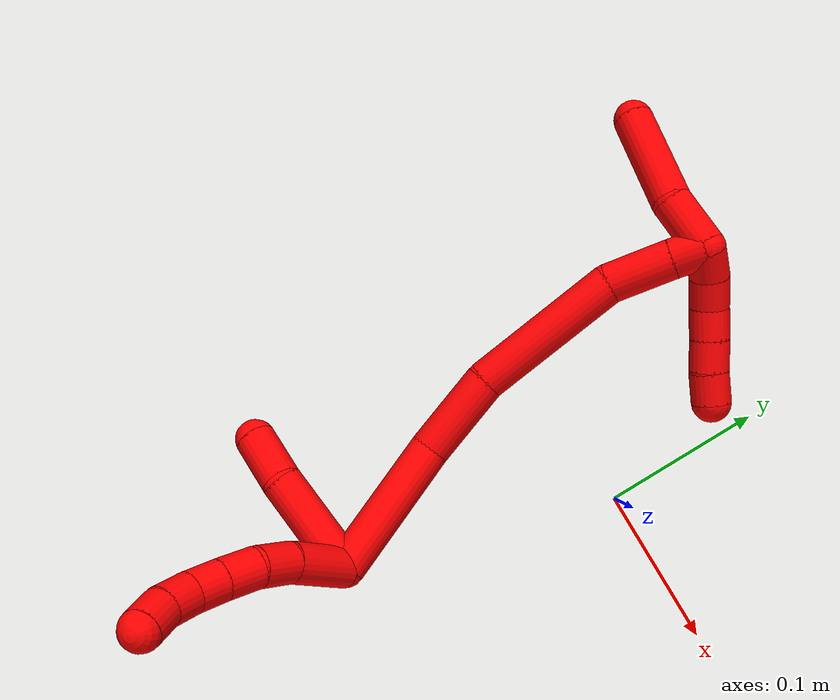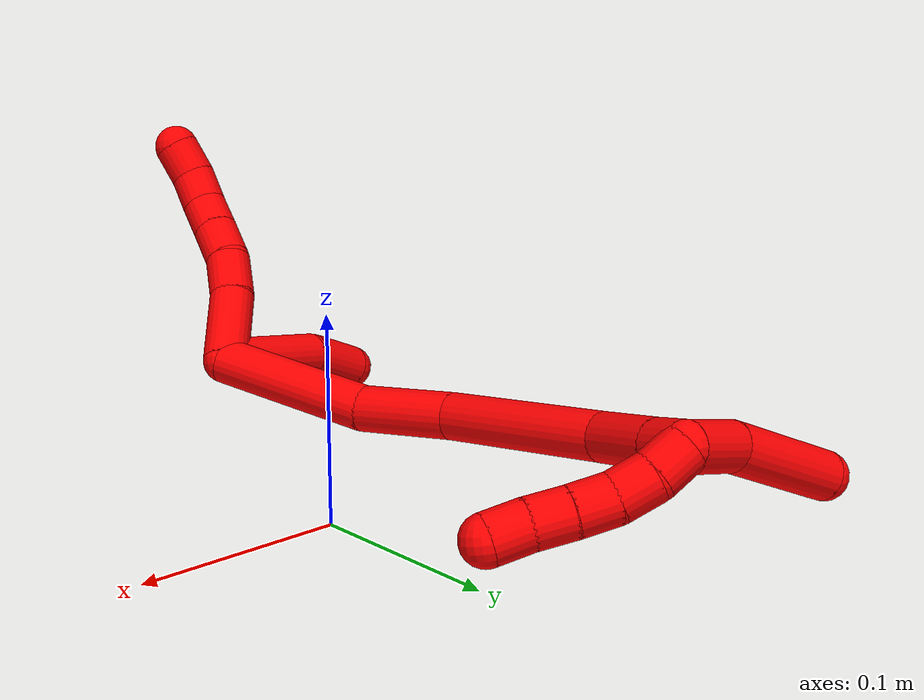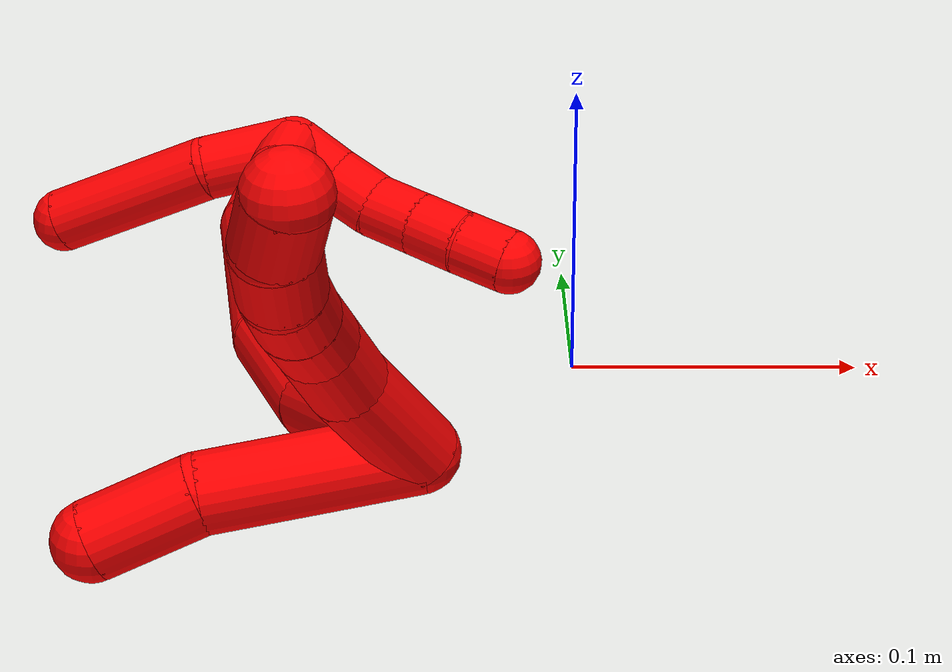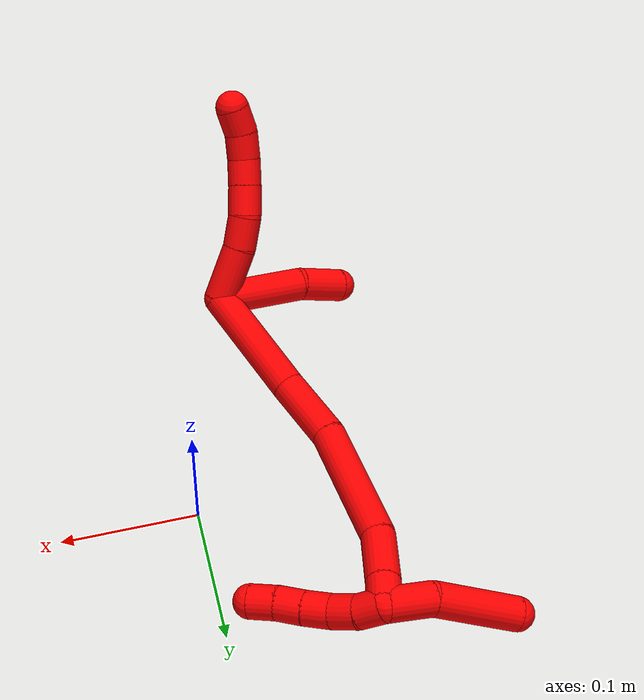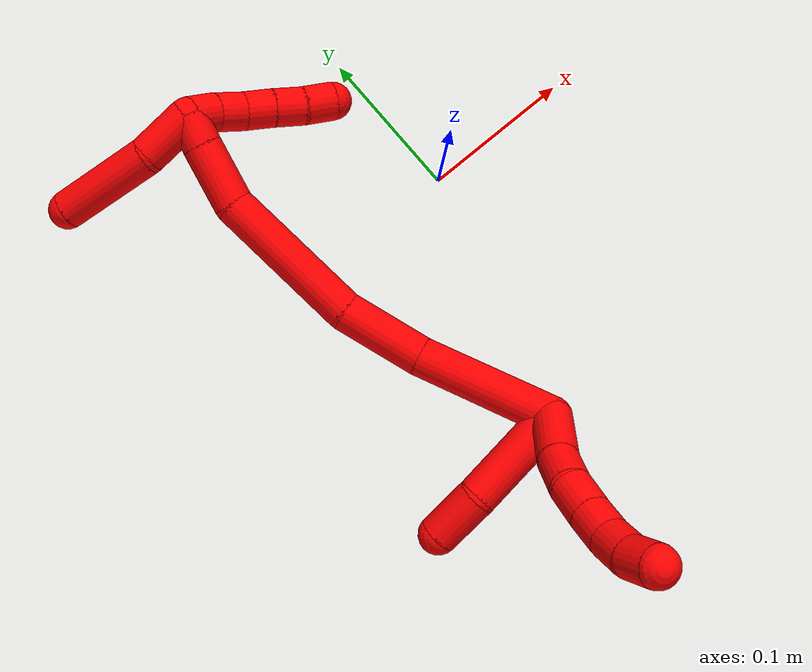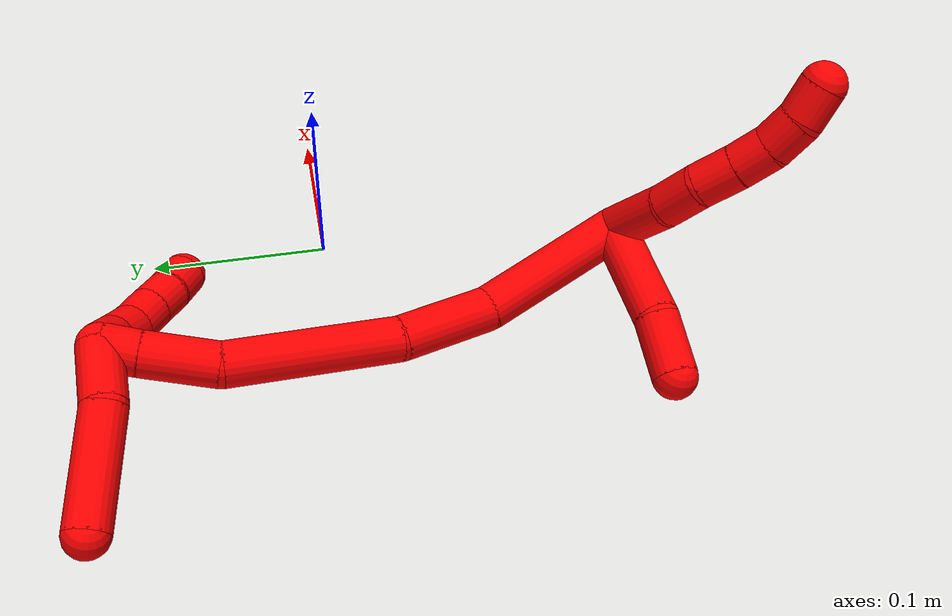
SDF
<sdf version="1.7">
 <world name="default">
  <model name="2">
   <static>0</static>
   <link name="2">
    <collision name="collision-cylinder-e_1_2_8">
     <pose>-0.004645 -0.010701 0.017431 0.550582 -0.223329 -0.063324</pose>
     <geometry><cylinder><radius>0.0125</radius><length>0.041949</length></cylinder></geometry>
     <surface>
      <friction><ode><mu>1.16</mu><mu2>1.16</mu2><slip1>0</slip1><slip2>0</slip2></ode></friction>
      <contact><ode><kp>1e+06</kp><kd>1</kd><max_vel>0</max_vel><min_depth>0.001</min_depth></ode></contact>
     </surface>
    </collision>
    <visual name="visual-cylinder-e_1_2_8">
     <pose>-0.004645 -0.010701 0.017431 0.550582 -0.223329 -0.063324</pose>
     <geometry><cylinder><radius>0.0125</radius><length>0.041949</length></cylinder></geometry>
     <material><ambient>1 0 0 1</ambient></material>
    </visual>
    <collision name="collision-cylinder-e_2_8_9">
     <pose>-0.009765 -0.027564 0.045403 0.529022 -0.038807 -0.010512</pose>
     <geometry><cylinder><radius>0.0125</radius><length>0.024439</length></cylinder></geometry>
     <surface>
      <friction><ode><mu>1.16</mu><mu2>1.16</mu2><slip1>0</slip1><slip2>0</slip2></ode></friction>
      <contact><ode><kp>1e+06</kp><kd>1</kd><max_vel>0</max_vel><min_depth>0.001</min_depth></ode></contact>
     </surface>
    </collision>
    <visual name="visual-cylinder-e_2_8_9">
     <pose>-0.009765 -0.027564 0.045403 0.529022 -0.038807 -0.010512</pose>
     <geometry><cylinder><radius>0.0125</radius><length>0.024439</length></cylinder></geometry>
     <material><ambient>1 0 0 1</ambient></material>
    </visual>
    <collision name="collision-cylinder-e_3_9_10">
     <pose>-0.008199 -0.040696 0.06479 0.667277 0.179194 0.062255</pose>
     <geometry><cylinder><radius>0.0125</radius><length>0.022889</length></cylinder></geometry>
     <surface>
      <friction><ode><mu>1.16</mu><mu2>1.16</mu2><slip1>0</slip1><slip2>0</slip2></ode></friction>
      <contact><ode><kp>1e+06</kp><kd>1</kd><max_vel>0</max_vel><min_depth>0.001</min_depth></ode></contact>
     </surface>
    </collision>
    <visual name="visual-cylinder-e_3_9_10">
     <pose>-0.008199 -0.040696 0.06479 0.667277 0.179194 0.062255</pose>
     <geometry><cylinder><radius>0.0125</radius><length>0.022889</length></cylinder></geometry>
     <material><ambient>1 0 0 1</ambient></material>
    </visual>
    <collision name="collision-cylinder-e_4_10_11">
     <pose>-0.004139 -0.053255 0.081749 0.603341 0.202289 0.06314</pose>
     <geometry><cylinder><radius>0.0125</radius><length>0.020116</length></cylinder></geometry>
     <surface>
      <friction><ode><mu>1.16</mu><mu2>1.16</mu2><slip1>0</slip1><slip2>0</slip2></ode></friction>
      <contact><ode><kp>1e+06</kp><kd>1</kd><max_vel>0</max_vel><min_depth>0.001</min_depth></ode></contact>
     </surface>
    </collision>
    <visual name="visual-cylinder-e_4_10_11">
     <pose>-0.004139 -0.053255 0.081749 0.603341 0.202289 0.06314</pose>
     <geometry><cylinder><radius>0.0125</radius><length>0.020116</length></cylinder></geometry>
     <material><ambient>1 0 0 1</ambient></material>
    </visual>
    <collision name="collision-cylinder-e_5_11_12">
     <pose>-0.0001 -0.062543 0.099075 0.381654 0.200519 0.038861</pose>
     <geometry><cylinder><radius>0.0125</radius><length>0.020261</length></cylinder></geometry>
     <surface>
      <friction><ode><mu>1.16</mu><mu2>1.16</mu2><slip1>0</slip1><slip2>0</slip2></ode></friction>
      <contact><ode><kp>1e+06</kp><kd>1</kd><max_vel>0</max_vel><min_depth>0.001</min_depth></ode></contact>
     </surface>
    </collision>
    <visual name="visual-cylinder-e_5_11_12">
     <pose>-0.0001 -0.062543 0.099075 0.381654 0.200519 0.038861</pose>
     <geometry><cylinder><radius>0.0125</radius><length>0.020261</length></cylinder></geometry>
     <material><ambient>1 0 0 1</ambient></material>
    </visual>
    <collision name="collision-cylinder-e_6_12_6">
     <pose>0.005462 -0.067622 0.117724 0.145361 0.355872 0.026186</pose>
     <geometry><cylinder><radius>0.0125</radius><length>0.020347</length></cylinder></geometry>
     <surface>
      <friction><ode><mu>1.16</mu><mu2>1.16</mu2><slip1>0</slip1><slip2>0</slip2></ode></friction>
      <contact><ode><kp>1e+06</kp><kd>1</kd><max_vel>0</max_vel><min_depth>0.001</min_depth></ode></contact>
     </surface>
    </collision>
    <visual name="visual-cylinder-e_6_12_6">
     <pose>0.005462 -0.067622 0.117724 0.145361 0.355872 0.026186</pose>
     <geometry><cylinder><radius>0.0125</radius><length>0.020347</length></cylinder></geometry>
     <material><ambient>1 0 0 1</ambient></material>
    </visual>
    <collision name="collision-cylinder-e_1_2_13">
     <pose>-0.025052 -0.020902 -0.00314 1.71992 -0.869986 -0.989816</pose>
     <geometry><cylinder><radius>0.0125</radius><length>0.065555</length></cylinder></geometry>
     <surface>
      <friction><ode><mu>1.16</mu><mu2>1.16</mu2><slip1>0</slip1><slip2>0</slip2></ode></friction>
      <contact><ode><kp>1e+06</kp><kd>1</kd><max_vel>0</max_vel><min_depth>0.001</min_depth></ode></contact>
     </surface>
    </collision>
    <visual name="visual-cylinder-e_1_2_13">
     <pose>-0.025052 -0.020902 -0.00314 1.71992 -0.869986 -0.989816</pose>
     <geometry><cylinder><radius>0.0125</radius><length>0.065555</length></cylinder></geometry>
     <material><ambient>1 0 0 1</ambient></material>
    </visual>
    <collision name="collision-cylinder-e_2_13_5">
     <pose>-0.062243 -0.052446 -0.012283 2.08432 -0.782075 -1.22926</pose>
     <geometry><cylinder><radius>0.0125</radius><length>0.034445</length></cylinder></geometry>
     <surface>
      <friction><ode><mu>1.16</mu><mu2>1.16</mu2><slip1>0</slip1><slip2>0</slip2></ode></friction>
      <contact><ode><kp>1e+06</kp><kd>1</kd><max_vel>0</max_vel><min_depth>0.001</min_depth></ode></contact>
     </surface>
    </collision>
    <visual name="visual-cylinder-e_2_13_5">
     <pose>-0.062243 -0.052446 -0.012283 2.08432 -0.782075 -1.22926</pose>
     <geometry><cylinder><radius>0.0125</radius><length>0.034445</length></cylinder></geometry>
     <material><ambient>1 0 0 1</ambient></material>
    </visual>
    <collision name="collision-cylinder-e_1_2_14">
     <pose>-0.034031 0.022167 -0.017127 -2.22862 -0.882105 1.53133</pose>
     <geometry><cylinder><radius>0.0125</radius><length>0.088155</length></cylinder></geometry>
     <surface>
      <friction><ode><mu>1.16</mu><mu2>1.16</mu2><slip1>0</slip1><slip2>0</slip2></ode></friction>
      <contact><ode><kp>1e+06</kp><kd>1</kd><max_vel>0</max_vel><min_depth>0.001</min_depth></ode></contact>
     </surface>
    </collision>
    <visual name="visual-cylinder-e_1_2_14">
     <pose>-0.034031 0.022167 -0.017127 -2.22862 -0.882105 1.53133</pose>
     <geometry><cylinder><radius>0.0125</radius><length>0.088155</length></cylinder></geometry>
     <material><ambient>1 0 0 1</ambient></material>
    </visual>
    <collision name="collision-cylinder-e_2_14_15">
     <pose>-0.089006 0.06115 -0.038265 -1.80496 -0.880726 1.0762</pose>
     <geometry><cylinder><radius>0.0125</radius><length>0.054314</length></cylinder></geometry>
     <surface>
      <friction><ode><mu>1.16</mu><mu2>1.16</mu2><slip1>0</slip1><slip2>0</slip2></ode></friction>
      <contact><ode><kp>1e+06</kp><kd>1</kd><max_vel>0</max_vel><min_depth>0.001</min_depth></ode></contact>
     </surface>
    </collision>
    <visual name="visual-cylinder-e_2_14_15">
     <pose>-0.089006 0.06115 -0.038265 -1.80496 -0.880726 1.0762</pose>
     <geometry><cylinder><radius>0.0125</radius><length>0.054314</length></cylinder></geometry>
     <material><ambient>1 0 0 1</ambient></material>
    </visual>
    <collision name="collision-cylinder-e_3_15_16">
     <pose>-0.139382 0.115102 -0.048819 -1.74518 -0.662761 0.778164</pose>
     <geometry><cylinder><radius>0.0125</radius><length>0.09567</length></cylinder></geometry>
     <surface>
      <friction><ode><mu>1.16</mu><mu2>1.16</mu2><slip1>0</slip1><slip2>0</slip2></ode></friction>
      <contact><ode><kp>1e+06</kp><kd>1</kd><max_vel>0</max_vel><min_depth>0.001</min_depth></ode></contact>
     </surface>
    </collision>
    <visual name="visual-cylinder-e_3_15_16">
     <pose>-0.139382 0.115102 -0.048819 -1.74518 -0.662761 0.778164</pose>
     <geometry><cylinder><radius>0.0125</radius><length>0.09567</length></cylinder></geometry>
     <material><ambient>1 0 0 1</ambient></material>
    </visual>
    <collision name="collision-cylinder-e_4_16_17">
     <pose>-0.176189 0.171547 -0.056271 -1.61788 -0.364431 0.381593</pose>
     <geometry><cylinder><radius>0.0125</radius><length>0.041378</length></cylinder></geometry>
     <surface>
      <friction><ode><mu>1.16</mu><mu2>1.16</mu2><slip1>0</slip1><slip2>0</slip2></ode></friction>
      <contact><ode><kp>1e+06</kp><kd>1</kd><max_vel>0</max_vel><min_depth>0.001</min_depth></ode></contact>
     </surface>
    </collision>
    <visual name="visual-cylinder-e_4_16_17">
     <pose>-0.176189 0.171547 -0.056271 -1.61788 -0.364431 0.381593</pose>
     <geometry><cylinder><radius>0.0125</radius><length>0.041378</length></cylinder></geometry>
     <material><ambient>1 0 0 1</ambient></material>
    </visual>
    <collision name="collision-cylinder-e_5_17_1">
     <pose>-0.186855 0.200554 -0.057288 -1.58188 -0.32728 0.330864</pose>
     <geometry><cylinder><radius>0.0125</radius><length>0.020483</length></cylinder></geometry>
     <surface>
      <friction><ode><mu>1.16</mu><mu2>1.16</mu2><slip1>0</slip1><slip2>0</slip2></ode></friction>
      <contact><ode><kp>1e+06</kp><kd>1</kd><max_vel>0</max_vel><min_depth>0.001</min_depth></ode></contact>
     </surface>
    </collision>
    <visual name="visual-cylinder-e_5_17_1">
     <pose>-0.186855 0.200554 -0.057288 -1.58188 -0.32728 0.330864</pose>
     <geometry><cylinder><radius>0.0125</radius><length>0.020483</length></cylinder></geometry>
     <material><ambient>1 0 0 1</ambient></material>
    </visual>
    <collision name="collision-cylinder-e_1_1_18">
     <pose>-0.181571 0.211352 -0.062419 -2.92581 1.03064 -2.76368</pose>
     <geometry><cylinder><radius>0.0125</radius><length>0.02</length></cylinder></geometry>
     <surface>
      <friction><ode><mu>1.16</mu><mu2>1.16</mu2><slip1>0</slip1><slip2>0</slip2></ode></friction>
      <contact><ode><kp>1e+06</kp><kd>1</kd><max_vel>0</max_vel><min_depth>0.001</min_depth></ode></contact>
     </surface>
    </collision>
    <visual name="visual-cylinder-e_1_1_18">
     <pose>-0.181571 0.211352 -0.062419 -2.92581 1.03064 -2.76368</pose>
     <geometry><cylinder><radius>0.0125</radius><length>0.02</length></cylinder></geometry>
     <material><ambient>1 0 0 1</ambient></material>
    </visual>
    <collision name="collision-cylinder-e_2_18_19">
     <pose>-0.163592 0.212236 -0.07084 3.07764 1.22345 3.05045</pose>
     <geometry><cylinder><radius>0.0125</radius><length>0.02</length></cylinder></geometry>
     <surface>
      <friction><ode><mu>1.16</mu><mu2>1.16</mu2><slip1>0</slip1><slip2>0</slip2></ode></friction>
      <contact><ode><kp>1e+06</kp><kd>1</kd><max_vel>0</max_vel><min_depth>0.001</min_depth></ode></contact>
     </surface>
    </collision>
    <visual name="visual-cylinder-e_2_18_19">
     <pose>-0.163592 0.212236 -0.07084 3.07764 1.22345 3.05045</pose>
     <geometry><cylinder><radius>0.0125</radius><length>0.02</length></cylinder></geometry>
     <material><ambient>1 0 0 1</ambient></material>
    </visual>
    <collision name="collision-cylinder-e_3_19_20">
     <pose>-0.144284 0.212193 -0.075603 -3.01397 1.43259 -2.99505</pose>
     <geometry><cylinder><radius>0.0125</radius><length>0.02</length></cylinder></geometry>
     <surface>
      <friction><ode><mu>1.16</mu><mu2>1.16</mu2><slip1>0</slip1><slip2>0</slip2></ode></friction>
      <contact><ode><kp>1e+06</kp><kd>1</kd><max_vel>0</max_vel><min_depth>0.001</min_depth></ode></contact>
     </surface>
    </collision>
    <visual name="visual-cylinder-e_3_19_20">
     <pose>-0.144284 0.212193 -0.075603 -3.01397 1.43259 -2.99505</pose>
     <geometry><cylinder><radius>0.0125</radius><length>0.02</length></cylinder></geometry>
     <material><ambient>1 0 0 1</ambient></material>
    </visual>
    <collision name="collision-cylinder-e_4_20_21">
     <pose>-0.124438 0.212089 -0.078012 2.8791 1.46262 2.84945</pose>
     <geometry><cylinder><radius>0.0125</radius><length>0.02</length></cylinder></geometry>
     <surface>
      <friction><ode><mu>1.16</mu><mu2>1.16</mu2><slip1>0</slip1><slip2>0</slip2></ode></friction>
      <contact><ode><kp>1e+06</kp><kd>1</kd><max_vel>0</max_vel><min_depth>0.001</min_depth></ode></contact>
     </surface>
    </collision>
    <visual name="visual-cylinder-e_4_20_21">
     <pose>-0.124438 0.212089 -0.078012 2.8791 1.46262 2.84945</pose>
     <geometry><cylinder><radius>0.0125</radius><length>0.02</length></cylinder></geometry>
     <material><ambient>1 0 0 1</ambient></material>
    </visual>
    <collision name="collision-cylinder-e_5_21_4">
     <pose>-0.104656 0.212521 -0.080685 -2.72934 1.39193 -2.65108</pose>
     <geometry><cylinder><radius>0.0125</radius><length>0.02</length></cylinder></geometry>
     <surface>
      <friction><ode><mu>1.16</mu><mu2>1.16</mu2><slip1>0</slip1><slip2>0</slip2></ode></friction>
      <contact><ode><kp>1e+06</kp><kd>1</kd><max_vel>0</max_vel><min_depth>0.001</min_depth></ode></contact>
     </surface>
    </collision>
    <visual name="visual-cylinder-e_5_21_4">
     <pose>-0.104656 0.212521 -0.080685 -2.72934 1.39193 -2.65108</pose>
     <geometry><cylinder><radius>0.0125</radius><length>0.02</length></cylinder></geometry>
     <material><ambient>1 0 0 1</ambient></material>
    </visual>
    <collision name="collision-cylinder-e_1_1_22">
     <pose>-0.204158 0.200026 -0.060617 1.87602 -0.917659 -1.18554</pose>
     <geometry><cylinder><radius>0.0125</radius><length>0.035284</length></cylinder></geometry>
     <surface>
      <friction><ode><mu>1.16</mu><mu2>1.16</mu2><slip1>0</slip1><slip2>0</slip2></ode></friction>
      <contact><ode><kp>1e+06</kp><kd>1</kd><max_vel>0</max_vel><min_depth>0.001</min_depth></ode></contact>
     </surface>
    </collision>
    <visual name="visual-cylinder-e_1_1_22">
     <pose>-0.204158 0.200026 -0.060617 1.87602 -0.917659 -1.18554</pose>
     <geometry><cylinder><radius>0.0125</radius><length>0.035284</length></cylinder></geometry>
     <material><ambient>1 0 0 1</ambient></material>
    </visual>
    <collision name="collision-cylinder-e_2_22_3">
     <pose>-0.244937 0.176995 -0.076745 2.36011 -0.974173 -1.81958</pose>
     <geometry><cylinder><radius>0.0125</radius><length>0.064716</length></cylinder></geometry>
     <surface>
      <friction><ode><mu>1.16</mu><mu2>1.16</mu2><slip1>0</slip1><slip2>0</slip2></ode></friction>
      <contact><ode><kp>1e+06</kp><kd>1</kd><max_vel>0</max_vel><min_depth>0.001</min_depth></ode></contact>
     </surface>
    </collision>
    <visual name="visual-cylinder-e_2_22_3">
     <pose>-0.244937 0.176995 -0.076745 2.36011 -0.974173 -1.81958</pose>
     <geometry><cylinder><radius>0.0125</radius><length>0.064716</length></cylinder></geometry>
     <material><ambient>1 0 0 1</ambient></material>
    </visual>
    <collision name="collision-sphere-3">
     <pose>-0.271705 0.16419 -0.08965 0 -0 0</pose>
     <geometry><sphere><radius>0.0125</radius></sphere></geometry>
     <surface>
      <friction><ode><mu>1.16</mu><mu2>1.16</mu2><slip1>0</slip1><slip2>0</slip2></ode></friction>
      <contact><ode><kp>1e+06</kp><kd>1</kd><max_vel>0</max_vel><min_depth>0.001</min_depth></ode></contact>
     </surface>
    </collision>
    <visual name="visual-sphere-3">
     <pose>-0.271705 0.16419 -0.08965 0 -0 0</pose>
     <geometry><sphere><radius>0.0125</radius></sphere></geometry>
     <material><ambient>1 0 0 1</ambient></material>
    </visual>
    <collision name="collision-sphere-22">
     <pose>-0.218169 0.189801 -0.063839 0 -0 0</pose>
     <geometry><sphere><radius>0.0125</radius></sphere></geometry>
     <surface>
      <friction><ode><mu>1.16</mu><mu2>1.16</mu2><slip1>0</slip1><slip2>0</slip2></ode></friction>
      <contact><ode><kp>1e+06</kp><kd>1</kd><max_vel>0</max_vel><min_depth>0.001</min_depth></ode></contact>
     </surface>
    </collision>
    <visual name="visual-sphere-22">
     <pose>-0.218169 0.189801 -0.063839 0 -0 0</pose>
     <geometry><sphere><radius>0.0125</radius></sphere></geometry>
     <material><ambient>1 0 0 1</ambient></material>
    </visual>
    <collision name="collision-sphere-4">
     <pose>-0.094816 0.213234 -0.082315 0 -0 0</pose>
     <geometry><sphere><radius>0.0125</radius></sphere></geometry>
     <surface>
      <friction><ode><mu>1.16</mu><mu2>1.16</mu2><slip1>0</slip1><slip2>0</slip2></ode></friction>
      <contact><ode><kp>1e+06</kp><kd>1</kd><max_vel>0</max_vel><min_depth>0.001</min_depth></ode></contact>
     </surface>
    </collision>
    <visual name="visual-sphere-4">
     <pose>-0.094816 0.213234 -0.082315 0 -0 0</pose>
     <geometry><sphere><radius>0.0125</radius></sphere></geometry>
     <material><ambient>1 0 0 1</ambient></material>
    </visual>
    <collision name="collision-sphere-21">
     <pose>-0.114497 0.211808 -0.079055 0 -0 0</pose>
     <geometry><sphere><radius>0.0125</radius></sphere></geometry>
     <surface>
      <friction><ode><mu>1.16</mu><mu2>1.16</mu2><slip1>0</slip1><slip2>0</slip2></ode></friction>
      <contact><ode><kp>1e+06</kp><kd>1</kd><max_vel>0</max_vel><min_depth>0.001</min_depth></ode></contact>
     </surface>
    </collision>
    <visual name="visual-sphere-21">
     <pose>-0.114497 0.211808 -0.079055 0 -0 0</pose>
     <geometry><sphere><radius>0.0125</radius></sphere></geometry>
     <material><ambient>1 0 0 1</ambient></material>
    </visual>
    <collision name="collision-sphere-20">
     <pose>-0.13438 0.212369 -0.076969 0 -0 0</pose>
     <geometry><sphere><radius>0.0125</radius></sphere></geometry>
     <surface>
      <friction><ode><mu>1.16</mu><mu2>1.16</mu2><slip1>0</slip1><slip2>0</slip2></ode></friction>
      <contact><ode><kp>1e+06</kp><kd>1</kd><max_vel>0</max_vel><min_depth>0.001</min_depth></ode></contact>
     </surface>
    </collision>
    <visual name="visual-sphere-20">
     <pose>-0.13438 0.212369 -0.076969 0 -0 0</pose>
     <geometry><sphere><radius>0.0125</radius></sphere></geometry>
     <material><ambient>1 0 0 1</ambient></material>
    </visual>
    <collision name="collision-sphere-12">
     <pose>0.001918 -0.06624 0.108288 0 -0 0</pose>
     <geometry><sphere><radius>0.0125</radius></sphere></geometry>
     <surface>
      <friction><ode><mu>1.16</mu><mu2>1.16</mu2><slip1>0</slip1><slip2>0</slip2></ode></friction>
      <contact><ode><kp>1e+06</kp><kd>1</kd><max_vel>0</max_vel><min_depth>0.001</min_depth></ode></contact>
     </surface>
    </collision>
    <visual name="visual-sphere-12">
     <pose>0.001918 -0.06624 0.108288 0 -0 0</pose>
     <geometry><sphere><radius>0.0125</radius></sphere></geometry>
     <material><ambient>1 0 0 1</ambient></material>
    </visual>
    <collision name="collision-sphere-11">
     <pose>-0.002118 -0.058845 0.089862 0 -0 0</pose>
     <geometry><sphere><radius>0.0125</radius></sphere></geometry>
     <surface>
      <friction><ode><mu>1.16</mu><mu2>1.16</mu2><slip1>0</slip1><slip2>0</slip2></ode></friction>
      <contact><ode><kp>1e+06</kp><kd>1</kd><max_vel>0</max_vel><min_depth>0.001</min_depth></ode></contact>
     </surface>
    </collision>
    <visual name="visual-sphere-11">
     <pose>-0.002118 -0.058845 0.089862 0 -0 0</pose>
     <geometry><sphere><radius>0.0125</radius></sphere></geometry>
     <material><ambient>1 0 0 1</ambient></material>
    </visual>
    <collision name="collision-sphere-10">
     <pose>-0.006159 -0.047665 0.073636 0 -0 0</pose>
     <geometry><sphere><radius>0.0125</radius></sphere></geometry>
     <surface>
      <friction><ode><mu>1.16</mu><mu2>1.16</mu2><slip1>0</slip1><slip2>0</slip2></ode></friction>
      <contact><ode><kp>1e+06</kp><kd>1</kd><max_vel>0</max_vel><min_depth>0.001</min_depth></ode></contact>
     </surface>
    </collision>
    <visual name="visual-sphere-10">
     <pose>-0.006159 -0.047665 0.073636 0 -0 0</pose>
     <geometry><sphere><radius>0.0125</radius></sphere></geometry>
     <material><ambient>1 0 0 1</ambient></material>
    </visual>
    <collision name="collision-sphere-9">
     <pose>-0.010239 -0.033727 0.055944 0 -0 0</pose>
     <geometry><sphere><radius>0.0125</radius></sphere></geometry>
     <surface>
      <friction><ode><mu>1.16</mu><mu2>1.16</mu2><slip1>0</slip1><slip2>0</slip2></ode></friction>
      <contact><ode><kp>1e+06</kp><kd>1</kd><max_vel>0</max_vel><min_depth>0.001</min_depth></ode></contact>
     </surface>
    </collision>
    <visual name="visual-sphere-9">
     <pose>-0.010239 -0.033727 0.055944 0 -0 0</pose>
     <geometry><sphere><radius>0.0125</radius></sphere></geometry>
     <material><ambient>1 0 0 1</ambient></material>
    </visual>
    <collision name="collision-sphere-2">
     <geometry><sphere><radius>0.0125</radius></sphere></geometry>
     <surface>
      <friction><ode><mu>1.16</mu><mu2>1.16</mu2><slip1>0</slip1><slip2>0</slip2></ode></friction>
      <contact><ode><kp>1e+06</kp><kd>1</kd><max_vel>0</max_vel><min_depth>0.001</min_depth></ode></contact>
     </surface>
    </collision>
    <visual name="visual-sphere-2">
     <geometry><sphere><radius>0.0125</radius></sphere></geometry>
     <material><ambient>1 0 0 1</ambient></material>
    </visual>
    <collision name="collision-sphere-19">
     <pose>-0.154189 0.212018 -0.074237 0 -0 0</pose>
     <geometry><sphere><radius>0.0125</radius></sphere></geometry>
     <surface>
      <friction><ode><mu>1.16</mu><mu2>1.16</mu2><slip1>0</slip1><slip2>0</slip2></ode></friction>
      <contact><ode><kp>1e+06</kp><kd>1</kd><max_vel>0</max_vel><min_depth>0.001</min_depth></ode></contact>
     </surface>
    </collision>
    <visual name="visual-sphere-19">
     <pose>-0.154189 0.212018 -0.074237 0 -0 0</pose>
     <geometry><sphere><radius>0.0125</radius></sphere></geometry>
     <material><ambient>1 0 0 1</ambient></material>
    </visual>
    <collision name="collision-sphere-8">
     <pose>-0.009291 -0.021402 0.034862 0 -0 0</pose>
     <geometry><sphere><radius>0.0125</radius></sphere></geometry>
     <surface>
      <friction><ode><mu>1.16</mu><mu2>1.16</mu2><slip1>0</slip1><slip2>0</slip2></ode></friction>
      <contact><ode><kp>1e+06</kp><kd>1</kd><max_vel>0</max_vel><min_depth>0.001</min_depth></ode></contact>
     </surface>
    </collision>
    <visual name="visual-sphere-8">
     <pose>-0.009291 -0.021402 0.034862 0 -0 0</pose>
     <geometry><sphere><radius>0.0125</radius></sphere></geometry>
     <material><ambient>1 0 0 1</ambient></material>
    </visual>
    <collision name="collision-sphere-6">
     <pose>0.009007 -0.069003 0.127159 0 -0 0</pose>
     <geometry><sphere><radius>0.0125</radius></sphere></geometry>
     <surface>
      <friction><ode><mu>1.16</mu><mu2>1.16</mu2><slip1>0</slip1><slip2>0</slip2></ode></friction>
      <contact><ode><kp>1e+06</kp><kd>1</kd><max_vel>0</max_vel><min_depth>0.001</min_depth></ode></contact>
     </surface>
    </collision>
    <visual name="visual-sphere-6">
     <pose>0.009007 -0.069003 0.127159 0 -0 0</pose>
     <geometry><sphere><radius>0.0125</radius></sphere></geometry>
     <material><ambient>1 0 0 1</ambient></material>
    </visual>
    <collision name="collision-sphere-13">
     <pose>-0.050105 -0.041803 -0.006281 0 -0 0</pose>
     <geometry><sphere><radius>0.0125</radius></sphere></geometry>
     <surface>
      <friction><ode><mu>1.16</mu><mu2>1.16</mu2><slip1>0</slip1><slip2>0</slip2></ode></friction>
      <contact><ode><kp>1e+06</kp><kd>1</kd><max_vel>0</max_vel><min_depth>0.001</min_depth></ode></contact>
     </surface>
    </collision>
    <visual name="visual-sphere-13">
     <pose>-0.050105 -0.041803 -0.006281 0 -0 0</pose>
     <geometry><sphere><radius>0.0125</radius></sphere></geometry>
     <material><ambient>1 0 0 1</ambient></material>
    </visual>
    <collision name="collision-sphere-5">
     <pose>-0.07438 -0.063088 -0.018285 0 -0 0</pose>
     <geometry><sphere><radius>0.0125</radius></sphere></geometry>
     <surface>
      <friction><ode><mu>1.16</mu><mu2>1.16</mu2><slip1>0</slip1><slip2>0</slip2></ode></friction>
      <contact><ode><kp>1e+06</kp><kd>1</kd><max_vel>0</max_vel><min_depth>0.001</min_depth></ode></contact>
     </surface>
    </collision>
    <visual name="visual-sphere-5">
     <pose>-0.07438 -0.063088 -0.018285 0 -0 0</pose>
     <geometry><sphere><radius>0.0125</radius></sphere></geometry>
     <material><ambient>1 0 0 1</ambient></material>
    </visual>
    <collision name="collision-sphere-14">
     <pose>-0.068063 0.044334 -0.034254 0 -0 0</pose>
     <geometry><sphere><radius>0.0125</radius></sphere></geometry>
     <surface>
      <friction><ode><mu>1.16</mu><mu2>1.16</mu2><slip1>0</slip1><slip2>0</slip2></ode></friction>
      <contact><ode><kp>1e+06</kp><kd>1</kd><max_vel>0</max_vel><min_depth>0.001</min_depth></ode></contact>
     </surface>
    </collision>
    <visual name="visual-sphere-14">
     <pose>-0.068063 0.044334 -0.034254 0 -0 0</pose>
     <geometry><sphere><radius>0.0125</radius></sphere></geometry>
     <material><ambient>1 0 0 1</ambient></material>
    </visual>
    <collision name="collision-sphere-15">
     <pose>-0.109949 0.077966 -0.042276 0 -0 0</pose>
     <geometry><sphere><radius>0.0125</radius></sphere></geometry>
     <surface>
      <friction><ode><mu>1.16</mu><mu2>1.16</mu2><slip1>0</slip1><slip2>0</slip2></ode></friction>
      <contact><ode><kp>1e+06</kp><kd>1</kd><max_vel>0</max_vel><min_depth>0.001</min_depth></ode></contact>
     </surface>
    </collision>
    <visual name="visual-sphere-15">
     <pose>-0.109949 0.077966 -0.042276 0 -0 0</pose>
     <geometry><sphere><radius>0.0125</radius></sphere></geometry>
     <material><ambient>1 0 0 1</ambient></material>
    </visual>
    <collision name="collision-sphere-16">
     <pose>-0.168815 0.152238 -0.055361 0 -0 0</pose>
     <geometry><sphere><radius>0.0125</radius></sphere></geometry>
     <surface>
      <friction><ode><mu>1.16</mu><mu2>1.16</mu2><slip1>0</slip1><slip2>0</slip2></ode></friction>
      <contact><ode><kp>1e+06</kp><kd>1</kd><max_vel>0</max_vel><min_depth>0.001</min_depth></ode></contact>
     </surface>
    </collision>
    <visual name="visual-sphere-16">
     <pose>-0.168815 0.152238 -0.055361 0 -0 0</pose>
     <geometry><sphere><radius>0.0125</radius></sphere></geometry>
     <material><ambient>1 0 0 1</ambient></material>
    </visual>
    <collision name="collision-sphere-17">
     <pose>-0.183563 0.190856 -0.057181 0 -0 0</pose>
     <geometry><sphere><radius>0.0125</radius></sphere></geometry>
     <surface>
      <friction><ode><mu>1.16</mu><mu2>1.16</mu2><slip1>0</slip1><slip2>0</slip2></ode></friction>
      <contact><ode><kp>1e+06</kp><kd>1</kd><max_vel>0</max_vel><min_depth>0.001</min_depth></ode></contact>
     </surface>
    </collision>
    <visual name="visual-sphere-17">
     <pose>-0.183563 0.190856 -0.057181 0 -0 0</pose>
     <geometry><sphere><radius>0.0125</radius></sphere></geometry>
     <material><ambient>1 0 0 1</ambient></material>
    </visual>
    <collision name="collision-sphere-1">
     <pose>-0.190147 0.210251 -0.057396 0 -0 0</pose>
     <geometry><sphere><radius>0.0125</radius></sphere></geometry>
     <surface>
      <friction><ode><mu>1.16</mu><mu2>1.16</mu2><slip1>0</slip1><slip2>0</slip2></ode></friction>
      <contact><ode><kp>1e+06</kp><kd>1</kd><max_vel>0</max_vel><min_depth>0.001</min_depth></ode></contact>
     </surface>
    </collision>
    <visual name="visual-sphere-1">
     <pose>-0.190147 0.210251 -0.057396 0 -0 0</pose>
     <geometry><sphere><radius>0.0125</radius></sphere></geometry>
     <material><ambient>1 0 0 1</ambient></material>
    </visual>
    <collision name="collision-sphere-18">
     <pose>-0.172995 0.212453 -0.067442 0 -0 0</pose>
     <geometry><sphere><radius>0.0125</radius></sphere></geometry>
     <surface>
      <friction><ode><mu>1.16</mu><mu2>1.16</mu2><slip1>0</slip1><slip2>0</slip2></ode></friction>
      <contact><ode><kp>1e+06</kp><kd>1</kd><max_vel>0</max_vel><min_depth>0.001</min_depth></ode></contact>
     </surface>
    </collision>
    <visual name="visual-sphere-18">
     <pose>-0.172995 0.212453 -0.067442 0 -0 0</pose>
     <geometry><sphere><radius>0.0125</radius></sphere></geometry>
     <material><ambient>1 0 0 1</ambient></material>
    </visual>
    <inertial>
     <pose>-0.098792 0.077691 -0.0233 0 -0 0</pose>
     <mass>0.75</mass>
     <inertia>
      <ixx>0.000119</ixx>
      <ixy>0</ixy>
      <ixz>0</ixz>
      <iyy>0.000188</iyy>
      <iyz>0</iyz>
      <izz>8.2e-05</izz>
     </inertia>
    </inertial>
   </link>
   <pose>-0.051973 -0.162024 0.036056 0.21724 0.100261 -0.535812</pose>
  </model>
 </world>
</sdf>
